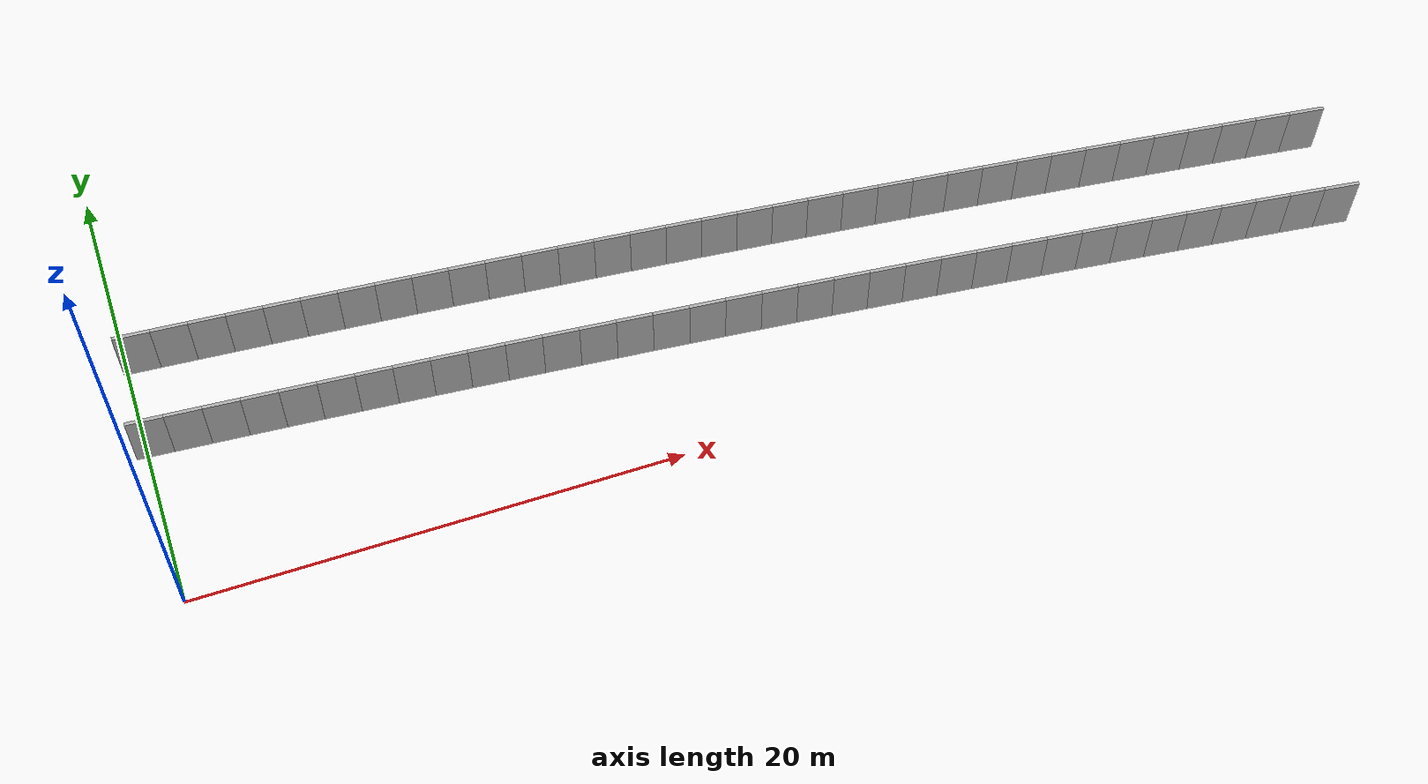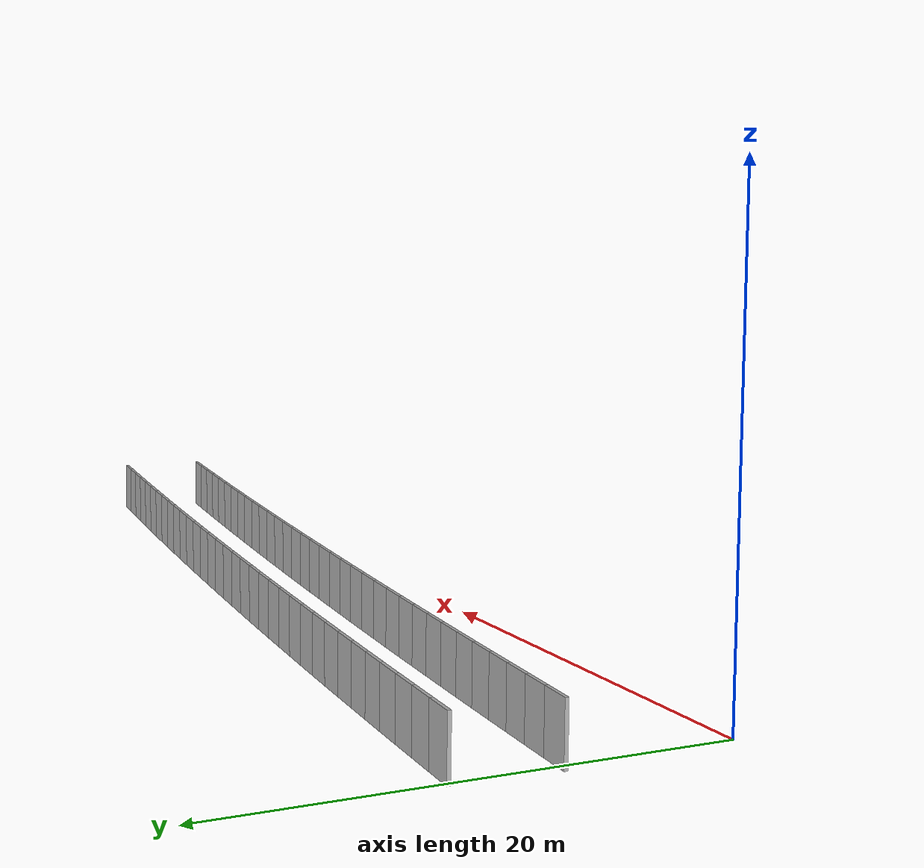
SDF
<?xml version="1.0" ?>
<sdf version="1.6">
  <model name="sps_2547">
    <pose frame="">0 0 0 0 -0 0</pose>
    <static>1</static>
    <self_collide>0</self_collide>
    <allow_auto_disable>0</allow_auto_disable>
    <link name="Wall2785">
      <kinematic>0</kinematic>
      <gravity>1</gravity>
      <self_collide>0</self_collide>
      <collision name="collision">
        <geometry>
          <box>
            <size>1.49657 0.15 2.5</size>
          </box>
        </geometry>
        <pose frame="">0 0 0 0 -0 0</pose>
      </collision>
      <visual name="visual">
        <geometry>
          <box>
            <size>1.49657 0.15 2.5</size>
          </box>
        </geometry>
        <pose frame="">0 0 0 0 -0 0</pose>
        <cast_shadows>1</cast_shadows>
        <transparency>0.0</transparency>
      </visual>
      <pose frame="">49.431 2.0302 1.25 0 -0 3.01741</pose>
    </link>
    <link name="Wall2786">
      <kinematic>0</kinematic>
      <gravity>1</gravity>
      <self_collide>0</self_collide>
      <collision name="collision">
        <geometry>
          <box>
            <size>1.49641 0.15 2.5</size>
          </box>
        </geometry>
        <pose frame="">0 0 0 0 -0 0</pose>
      </collision>
      <visual name="visual">
        <geometry>
          <box>
            <size>1.49641 0.15 2.5</size>
          </box>
        </geometry>
        <pose frame="">0 0 0 0 -0 0</pose>
        <cast_shadows>1</cast_shadows>
        <transparency>0.0</transparency>
      </visual>
      <pose frame="">47.9459 2.2144 1.25 0 -0 3.01896</pose>
    </link>
    <link name="Wall2787">
      <kinematic>0</kinematic>
      <gravity>1</gravity>
      <self_collide>0</self_collide>
      <collision name="collision">
        <geometry>
          <box>
            <size>1.49656 0.15 2.5</size>
          </box>
        </geometry>
        <pose frame="">0 0 0 0 -0 0</pose>
      </collision>
      <visual name="visual">
        <geometry>
          <box>
            <size>1.49656 0.15 2.5</size>
          </box>
        </geometry>
        <pose frame="">0 0 0 0 -0 0</pose>
        <cast_shadows>1</cast_shadows>
        <transparency>0.0</transparency>
      </visual>
      <pose frame="">46.4605 2.39632 1.25 0 -0 3.0205</pose>
    </link>
    <link name="Wall2788">
      <kinematic>0</kinematic>
      <gravity>1</gravity>
      <self_collide>0</self_collide>
      <collision name="collision">
        <geometry>
          <box>
            <size>1.49651 0.15 2.5</size>
          </box>
        </geometry>
        <pose frame="">0 0 0 0 -0 0</pose>
      </collision>
      <visual name="visual">
        <geometry>
          <box>
            <size>1.49651 0.15 2.5</size>
          </box>
        </geometry>
        <pose frame="">0 0 0 0 -0 0</pose>
        <cast_shadows>1</cast_shadows>
        <transparency>0.0</transparency>
      </visual>
      <pose frame="">44.9748 2.57591 1.25 0 -0 3.02209</pose>
    </link>
    <link name="Wall2789">
      <kinematic>0</kinematic>
      <gravity>1</gravity>
      <self_collide>0</self_collide>
      <collision name="collision">
        <geometry>
          <box>
            <size>1.49664 0.15 2.5</size>
          </box>
        </geometry>
        <pose frame="">0 0 0 0 -0 0</pose>
      </collision>
      <visual name="visual">
        <geometry>
          <box>
            <size>1.49664 0.15 2.5</size>
          </box>
        </geometry>
        <pose frame="">0 0 0 0 -0 0</pose>
        <cast_shadows>1</cast_shadows>
        <transparency>0.0</transparency>
      </visual>
      <pose frame="">43.4887 2.75331 1.25 0 -0 3.02346</pose>
    </link>
    <link name="Wall2790">
      <kinematic>0</kinematic>
      <gravity>1</gravity>
      <self_collide>0</self_collide>
      <collision name="collision">
        <geometry>
          <box>
            <size>1.49649 0.15 2.5</size>
          </box>
        </geometry>
        <pose frame="">0 0 0 0 -0 0</pose>
      </collision>
      <visual name="visual">
        <geometry>
          <box>
            <size>1.49649 0.15 2.5</size>
          </box>
        </geometry>
        <pose frame="">0 0 0 0 -0 0</pose>
        <cast_shadows>1</cast_shadows>
        <transparency>0.0</transparency>
      </visual>
      <pose frame="">42.0024 2.9283 1.25 0 -0 3.02534</pose>
    </link>
    <link name="Wall2791">
      <kinematic>0</kinematic>
      <gravity>1</gravity>
      <self_collide>0</self_collide>
      <collision name="collision">
        <geometry>
          <box>
            <size>1.49624 0.15 2.5</size>
          </box>
        </geometry>
        <pose frame="">0 0 0 0 -0 0</pose>
      </collision>
      <visual name="visual">
        <geometry>
          <box>
            <size>1.49624 0.15 2.5</size>
          </box>
        </geometry>
        <pose frame="">0 0 0 0 -0 0</pose>
        <cast_shadows>1</cast_shadows>
        <transparency>0.0</transparency>
      </visual>
      <pose frame="">40.516 3.10078 1.25 0 -0 3.0268</pose>
    </link>
    <link name="Wall2792">
      <kinematic>0</kinematic>
      <gravity>1</gravity>
      <self_collide>0</self_collide>
      <collision name="collision">
        <geometry>
          <box>
            <size>1.49655 0.15 2.5</size>
          </box>
        </geometry>
        <pose frame="">0 0 0 0 -0 0</pose>
      </collision>
      <visual name="visual">
        <geometry>
          <box>
            <size>1.49655 0.15 2.5</size>
          </box>
        </geometry>
        <pose frame="">0 0 0 0 -0 0</pose>
        <cast_shadows>1</cast_shadows>
        <transparency>0.0</transparency>
      </visual>
      <pose frame="">39.0293 3.27089 1.25 0 -0 3.02854</pose>
    </link>
    <link name="Wall2793">
      <kinematic>0</kinematic>
      <gravity>1</gravity>
      <self_collide>0</self_collide>
      <collision name="collision">
        <geometry>
          <box>
            <size>1.49648 0.15 2.5</size>
          </box>
        </geometry>
        <pose frame="">0 0 0 0 -0 0</pose>
      </collision>
      <visual name="visual">
        <geometry>
          <box>
            <size>1.49648 0.15 2.5</size>
          </box>
        </geometry>
        <pose frame="">0 0 0 0 -0 0</pose>
        <cast_shadows>1</cast_shadows>
        <transparency>0.0</transparency>
      </visual>
      <pose frame="">37.5423 3.43858 1.25 0 -0 3.03006</pose>
    </link>
    <link name="Wall2794">
      <kinematic>0</kinematic>
      <gravity>1</gravity>
      <self_collide>0</self_collide>
      <collision name="collision">
        <geometry>
          <box>
            <size>1.49647 0.15 2.5</size>
          </box>
        </geometry>
        <pose frame="">0 0 0 0 -0 0</pose>
      </collision>
      <visual name="visual">
        <geometry>
          <box>
            <size>1.49647 0.15 2.5</size>
          </box>
        </geometry>
        <pose frame="">0 0 0 0 -0 0</pose>
        <cast_shadows>1</cast_shadows>
        <transparency>0.0</transparency>
      </visual>
      <pose frame="">36.055 3.60399 1.25 0 -0 3.03162</pose>
    </link>
    <link name="Wall2795">
      <kinematic>0</kinematic>
      <gravity>1</gravity>
      <self_collide>0</self_collide>
      <collision name="collision">
        <geometry>
          <box>
            <size>1.49659 0.15 2.5</size>
          </box>
        </geometry>
        <pose frame="">0 0 0 0 -0 0</pose>
      </collision>
      <visual name="visual">
        <geometry>
          <box>
            <size>1.49659 0.15 2.5</size>
          </box>
        </geometry>
        <pose frame="">0 0 0 0 -0 0</pose>
        <cast_shadows>1</cast_shadows>
        <transparency>0.0</transparency>
      </visual>
      <pose frame="">34.5673 3.7671 1.25 0 -0 3.03314</pose>
    </link>
    <link name="Wall2796">
      <kinematic>0</kinematic>
      <gravity>1</gravity>
      <self_collide>0</self_collide>
      <collision name="collision">
        <geometry>
          <box>
            <size>1.49649 0.15 2.5</size>
          </box>
        </geometry>
        <pose frame="">0 0 0 0 -0 0</pose>
      </collision>
      <visual name="visual">
        <geometry>
          <box>
            <size>1.49649 0.15 2.5</size>
          </box>
        </geometry>
        <pose frame="">0 0 0 0 -0 0</pose>
        <cast_shadows>1</cast_shadows>
        <transparency>0.0</transparency>
      </visual>
      <pose frame="">33.0795 3.92781 1.25 0 -0 3.03486</pose>
    </link>
    <link name="Wall2797">
      <kinematic>0</kinematic>
      <gravity>1</gravity>
      <self_collide>0</self_collide>
      <collision name="collision">
        <geometry>
          <box>
            <size>1.49652 0.15 2.5</size>
          </box>
        </geometry>
        <pose frame="">0 0 0 0 -0 0</pose>
      </collision>
      <visual name="visual">
        <geometry>
          <box>
            <size>1.49652 0.15 2.5</size>
          </box>
        </geometry>
        <pose frame="">0 0 0 0 -0 0</pose>
        <cast_shadows>1</cast_shadows>
        <transparency>0.0</transparency>
      </visual>
      <pose frame="">31.5914 4.0862 1.25 0 -0 3.03625</pose>
    </link>
    <link name="Wall2798">
      <kinematic>0</kinematic>
      <gravity>1</gravity>
      <self_collide>0</self_collide>
      <collision name="collision">
        <geometry>
          <box>
            <size>1.49659 0.15 2.5</size>
          </box>
        </geometry>
        <pose frame="">0 0 0 0 -0 0</pose>
      </collision>
      <visual name="visual">
        <geometry>
          <box>
            <size>1.49659 0.15 2.5</size>
          </box>
        </geometry>
        <pose frame="">0 0 0 0 -0 0</pose>
        <cast_shadows>1</cast_shadows>
        <transparency>0.0</transparency>
      </visual>
      <pose frame="">30.103 4.24217 1.25 0 -0 3.03811</pose>
    </link>
    <link name="Wall2799">
      <kinematic>0</kinematic>
      <gravity>1</gravity>
      <self_collide>0</self_collide>
      <collision name="collision">
        <geometry>
          <box>
            <size>1.49664 0.15 2.5</size>
          </box>
        </geometry>
        <pose frame="">0 0 0 0 -0 0</pose>
      </collision>
      <visual name="visual">
        <geometry>
          <box>
            <size>1.49664 0.15 2.5</size>
          </box>
        </geometry>
        <pose frame="">0 0 0 0 -0 0</pose>
        <cast_shadows>1</cast_shadows>
        <transparency>0.0</transparency>
      </visual>
      <pose frame="">28.6142 4.3958 1.25 0 -0 3.03942</pose>
    </link>
    <link name="Wall2800">
      <kinematic>0</kinematic>
      <gravity>1</gravity>
      <self_collide>0</self_collide>
      <collision name="collision">
        <geometry>
          <box>
            <size>1.4963 0.15 2.5</size>
          </box>
        </geometry>
        <pose frame="">0 0 0 0 -0 0</pose>
      </collision>
      <visual name="visual">
        <geometry>
          <box>
            <size>1.4963 0.15 2.5</size>
          </box>
        </geometry>
        <pose frame="">0 0 0 0 -0 0</pose>
        <cast_shadows>1</cast_shadows>
        <transparency>0.0</transparency>
      </visual>
      <pose frame="">27.1254 4.5471 1.25 0 -0 3.0412</pose>
    </link>
    <link name="Wall2801">
      <kinematic>0</kinematic>
      <gravity>1</gravity>
      <self_collide>0</self_collide>
      <collision name="collision">
        <geometry>
          <box>
            <size>1.49649 0.15 2.5</size>
          </box>
        </geometry>
        <pose frame="">0 0 0 0 -0 0</pose>
      </collision>
      <visual name="visual">
        <geometry>
          <box>
            <size>1.49649 0.15 2.5</size>
          </box>
        </geometry>
        <pose frame="">0 0 0 0 -0 0</pose>
        <cast_shadows>1</cast_shadows>
        <transparency>0.0</transparency>
      </visual>
      <pose frame="">25.6365 4.69588 1.25 0 -0 3.04281</pose>
    </link>
    <link name="Wall2802">
      <kinematic>0</kinematic>
      <gravity>1</gravity>
      <self_collide>0</self_collide>
      <collision name="collision">
        <geometry>
          <box>
            <size>1.49653 0.15 2.5</size>
          </box>
        </geometry>
        <pose frame="">0 0 0 0 -0 0</pose>
      </collision>
      <visual name="visual">
        <geometry>
          <box>
            <size>1.49653 0.15 2.5</size>
          </box>
        </geometry>
        <pose frame="">0 0 0 0 -0 0</pose>
        <cast_shadows>1</cast_shadows>
        <transparency>0.0</transparency>
      </visual>
      <pose frame="">24.1471 4.84239 1.25 0 -0 3.04425</pose>
    </link>
    <link name="Wall2803">
      <kinematic>0</kinematic>
      <gravity>1</gravity>
      <self_collide>0</self_collide>
      <collision name="collision">
        <geometry>
          <box>
            <size>1.49641 0.15 2.5</size>
          </box>
        </geometry>
        <pose frame="">0 0 0 0 -0 0</pose>
      </collision>
      <visual name="visual">
        <geometry>
          <box>
            <size>1.49641 0.15 2.5</size>
          </box>
        </geometry>
        <pose frame="">0 0 0 0 -0 0</pose>
        <cast_shadows>1</cast_shadows>
        <transparency>0.0</transparency>
      </visual>
      <pose frame="">22.6576 4.98662 1.25 0 -0 3.04588</pose>
    </link>
    <link name="Wall2804">
      <kinematic>0</kinematic>
      <gravity>1</gravity>
      <self_collide>0</self_collide>
      <collision name="collision">
        <geometry>
          <box>
            <size>1.49662 0.15 2.5</size>
          </box>
        </geometry>
        <pose frame="">0 0 0 0 -0 0</pose>
      </collision>
      <visual name="visual">
        <geometry>
          <box>
            <size>1.49662 0.15 2.5</size>
          </box>
        </geometry>
        <pose frame="">0 0 0 0 -0 0</pose>
        <cast_shadows>1</cast_shadows>
        <transparency>0.0</transparency>
      </visual>
      <pose frame="">21.1679 5.12849 1.25 0 -0 3.04741</pose>
    </link>
    <link name="Wall2805">
      <kinematic>0</kinematic>
      <gravity>1</gravity>
      <self_collide>0</self_collide>
      <collision name="collision">
        <geometry>
          <box>
            <size>1.49641 0.15 2.5</size>
          </box>
        </geometry>
        <pose frame="">0 0 0 0 -0 0</pose>
      </collision>
      <visual name="visual">
        <geometry>
          <box>
            <size>1.49641 0.15 2.5</size>
          </box>
        </geometry>
        <pose frame="">0 0 0 0 -0 0</pose>
        <cast_shadows>1</cast_shadows>
        <transparency>0.0</transparency>
      </visual>
      <pose frame="">19.6779 5.26808 1.25 0 -0 3.04895</pose>
    </link>
    <link name="Wall2806">
      <kinematic>0</kinematic>
      <gravity>1</gravity>
      <self_collide>0</self_collide>
      <collision name="collision">
        <geometry>
          <box>
            <size>1.49643 0.15 2.5</size>
          </box>
        </geometry>
        <pose frame="">0 0 0 0 -0 0</pose>
      </collision>
      <visual name="visual">
        <geometry>
          <box>
            <size>1.49643 0.15 2.5</size>
          </box>
        </geometry>
        <pose frame="">0 0 0 0 -0 0</pose>
        <cast_shadows>1</cast_shadows>
        <transparency>0.0</transparency>
      </visual>
      <pose frame="">18.1878 5.40529 1.25 0 -0 3.05059</pose>
    </link>
    <link name="Wall2807">
      <kinematic>0</kinematic>
      <gravity>1</gravity>
      <self_collide>0</self_collide>
      <collision name="collision">
        <geometry>
          <box>
            <size>1.49658 0.15 2.5</size>
          </box>
        </geometry>
        <pose frame="">0 0 0 0 -0 0</pose>
      </collision>
      <visual name="visual">
        <geometry>
          <box>
            <size>1.49658 0.15 2.5</size>
          </box>
        </geometry>
        <pose frame="">0 0 0 0 -0 0</pose>
        <cast_shadows>1</cast_shadows>
        <transparency>0.0</transparency>
      </visual>
      <pose frame="">16.6973 5.54008 1.25 0 -0 3.0522</pose>
    </link>
    <link name="Wall2808">
      <kinematic>0</kinematic>
      <gravity>1</gravity>
      <self_collide>0</self_collide>
      <collision name="collision">
        <geometry>
          <box>
            <size>1.49655 0.15 2.5</size>
          </box>
        </geometry>
        <pose frame="">0 0 0 0 -0 0</pose>
      </collision>
      <visual name="visual">
        <geometry>
          <box>
            <size>1.49655 0.15 2.5</size>
          </box>
        </geometry>
        <pose frame="">0 0 0 0 -0 0</pose>
        <cast_shadows>1</cast_shadows>
        <transparency>0.0</transparency>
      </visual>
      <pose frame="">15.2067 5.6725 1.25 0 -0 3.05379</pose>
    </link>
    <link name="Wall2809">
      <kinematic>0</kinematic>
      <gravity>1</gravity>
      <self_collide>0</self_collide>
      <collision name="collision">
        <geometry>
          <box>
            <size>1.49658 0.15 2.5</size>
          </box>
        </geometry>
        <pose frame="">0 0 0 0 -0 0</pose>
      </collision>
      <visual name="visual">
        <geometry>
          <box>
            <size>1.49658 0.15 2.5</size>
          </box>
        </geometry>
        <pose frame="">0 0 0 0 -0 0</pose>
        <cast_shadows>1</cast_shadows>
        <transparency>0.0</transparency>
      </visual>
      <pose frame="">13.7158 5.8025 1.25 0 -0 3.05543</pose>
    </link>
    <link name="Wall2810">
      <kinematic>0</kinematic>
      <gravity>1</gravity>
      <self_collide>0</self_collide>
      <collision name="collision">
        <geometry>
          <box>
            <size>1.49633 0.15 2.5</size>
          </box>
        </geometry>
        <pose frame="">0 0 0 0 -0 0</pose>
      </collision>
      <visual name="visual">
        <geometry>
          <box>
            <size>1.49633 0.15 2.5</size>
          </box>
        </geometry>
        <pose frame="">0 0 0 0 -0 0</pose>
        <cast_shadows>1</cast_shadows>
        <transparency>0.0</transparency>
      </visual>
      <pose frame="">12.2248 5.93019 1.25 0 -0 3.05689</pose>
    </link>
    <link name="Wall2811">
      <kinematic>0</kinematic>
      <gravity>1</gravity>
      <self_collide>0</self_collide>
      <collision name="collision">
        <geometry>
          <box>
            <size>1.49654 0.15 2.5</size>
          </box>
        </geometry>
        <pose frame="">0 0 0 0 -0 0</pose>
      </collision>
      <visual name="visual">
        <geometry>
          <box>
            <size>1.49654 0.15 2.5</size>
          </box>
        </geometry>
        <pose frame="">0 0 0 0 -0 0</pose>
        <cast_shadows>1</cast_shadows>
        <transparency>0.0</transparency>
      </visual>
      <pose frame="">10.7336 6.0555 1.25 0 -0 3.05862</pose>
    </link>
    <link name="Wall2812">
      <kinematic>0</kinematic>
      <gravity>1</gravity>
      <self_collide>0</self_collide>
      <collision name="collision">
        <geometry>
          <box>
            <size>1.4966 0.15 2.5</size>
          </box>
        </geometry>
        <pose frame="">0 0 0 0 -0 0</pose>
      </collision>
      <visual name="visual">
        <geometry>
          <box>
            <size>1.4966 0.15 2.5</size>
          </box>
        </geometry>
        <pose frame="">0 0 0 0 -0 0</pose>
        <cast_shadows>1</cast_shadows>
        <transparency>0.0</transparency>
      </visual>
      <pose frame="">9.24206 6.17839 1.25 0 -0 3.06014</pose>
    </link>
    <link name="Wall2813">
      <kinematic>0</kinematic>
      <gravity>1</gravity>
      <self_collide>0</self_collide>
      <collision name="collision">
        <geometry>
          <box>
            <size>1.49653 0.15 2.5</size>
          </box>
        </geometry>
        <pose frame="">0 0 0 0 -0 0</pose>
      </collision>
      <visual name="visual">
        <geometry>
          <box>
            <size>1.49653 0.15 2.5</size>
          </box>
        </geometry>
        <pose frame="">0 0 0 0 -0 0</pose>
        <cast_shadows>1</cast_shadows>
        <transparency>0.0</transparency>
      </visual>
      <pose frame="">7.75036 6.29899 1.25 0 -0 3.06169</pose>
    </link>
    <link name="Wall2814">
      <kinematic>0</kinematic>
      <gravity>1</gravity>
      <self_collide>0</self_collide>
      <collision name="collision">
        <geometry>
          <box>
            <size>1.4964 0.15 2.5</size>
          </box>
        </geometry>
        <pose frame="">0 0 0 0 -0 0</pose>
      </collision>
      <visual name="visual">
        <geometry>
          <box>
            <size>1.4964 0.15 2.5</size>
          </box>
        </geometry>
        <pose frame="">0 0 0 0 -0 0</pose>
        <cast_shadows>1</cast_shadows>
        <transparency>0.0</transparency>
      </visual>
      <pose frame="">6.25857 6.41722 1.25 0 -0 3.06332</pose>
    </link>
    <link name="Wall2815">
      <kinematic>0</kinematic>
      <gravity>1</gravity>
      <self_collide>0</self_collide>
      <collision name="collision">
        <geometry>
          <box>
            <size>1.49659 0.15 2.5</size>
          </box>
        </geometry>
        <pose frame="">0 0 0 0 -0 0</pose>
      </collision>
      <visual name="visual">
        <geometry>
          <box>
            <size>1.49659 0.15 2.5</size>
          </box>
        </geometry>
        <pose frame="">0 0 0 0 -0 0</pose>
        <cast_shadows>1</cast_shadows>
        <transparency>0.0</transparency>
      </visual>
      <pose frame="">4.76656 6.5331 1.25 0 -0 3.06485</pose>
    </link>
    <link name="Wall2816">
      <kinematic>0</kinematic>
      <gravity>1</gravity>
      <self_collide>0</self_collide>
      <collision name="collision">
        <geometry>
          <box>
            <size>1.4964 0.15 2.5</size>
          </box>
        </geometry>
        <pose frame="">0 0 0 0 -0 0</pose>
      </collision>
      <visual name="visual">
        <geometry>
          <box>
            <size>1.4964 0.15 2.5</size>
          </box>
        </geometry>
        <pose frame="">0 0 0 0 -0 0</pose>
        <cast_shadows>1</cast_shadows>
        <transparency>0.0</transparency>
      </visual>
      <pose frame="">3.27438 6.64659 1.25 0 -0 3.06651</pose>
    </link>
    <link name="Wall2817">
      <kinematic>0</kinematic>
      <gravity>1</gravity>
      <self_collide>0</self_collide>
      <collision name="collision">
        <geometry>
          <box>
            <size>1.49648 0.15 2.5</size>
          </box>
        </geometry>
        <pose frame="">0 0 0 0 -0 0</pose>
      </collision>
      <visual name="visual">
        <geometry>
          <box>
            <size>1.49648 0.15 2.5</size>
          </box>
        </geometry>
        <pose frame="">0 0 0 0 -0 0</pose>
        <cast_shadows>1</cast_shadows>
        <transparency>0.0</transparency>
      </visual>
      <pose frame="">1.78207 6.7577 1.25 0 -0 3.06803</pose>
    </link>
    <link name="Wall2818">
      <kinematic>0</kinematic>
      <gravity>1</gravity>
      <self_collide>0</self_collide>
      <collision name="collision">
        <geometry>
          <box>
            <size>1.49648 0.15 2.5</size>
          </box>
        </geometry>
        <pose frame="">0 0 0 0 -0 0</pose>
      </collision>
      <visual name="visual">
        <geometry>
          <box>
            <size>1.49648 0.15 2.5</size>
          </box>
        </geometry>
        <pose frame="">0 0 0 0 -0 0</pose>
        <cast_shadows>1</cast_shadows>
        <transparency>0.0</transparency>
      </visual>
      <pose frame="">0.289542 6.86641 1.25 0 -0 3.06975</pose>
    </link>
    <link name="Wall5396">
      <kinematic>0</kinematic>
      <gravity>1</gravity>
      <self_collide>0</self_collide>
      <collision name="collision">
        <geometry>
          <box>
            <size>1.50297 0.15 2.5</size>
          </box>
        </geometry>
        <pose frame="">0 0 0 0 -0 0</pose>
      </collision>
      <visual name="visual">
        <geometry>
          <box>
            <size>1.50297 0.15 2.5</size>
          </box>
        </geometry>
        <pose frame="">0 0 0 0 -0 0</pose>
        <cast_shadows>1</cast_shadows>
        <transparency>0.0</transparency>
      </visual>
      <pose frame="">49.9435 6.13798 1.25 0 -0 3.01737</pose>
    </link>
    <link name="Wall5397">
      <kinematic>0</kinematic>
      <gravity>1</gravity>
      <self_collide>0</self_collide>
      <collision name="collision">
        <geometry>
          <box>
            <size>1.50307 0.15 2.5</size>
          </box>
        </geometry>
        <pose frame="">0 0 0 0 -0 0</pose>
      </collision>
      <visual name="visual">
        <geometry>
          <box>
            <size>1.50307 0.15 2.5</size>
          </box>
        </geometry>
        <pose frame="">0 0 0 0 -0 0</pose>
        <cast_shadows>1</cast_shadows>
        <transparency>0.0</transparency>
      </visual>
      <pose frame="">48.452 6.3231 1.25 0 -0 3.01885</pose>
    </link>
    <link name="Wall5398">
      <kinematic>0</kinematic>
      <gravity>1</gravity>
      <self_collide>0</self_collide>
      <collision name="collision">
        <geometry>
          <box>
            <size>1.50323 0.15 2.5</size>
          </box>
        </geometry>
        <pose frame="">0 0 0 0 -0 0</pose>
      </collision>
      <visual name="visual">
        <geometry>
          <box>
            <size>1.50323 0.15 2.5</size>
          </box>
        </geometry>
        <pose frame="">0 0 0 0 -0 0</pose>
        <cast_shadows>1</cast_shadows>
        <transparency>0.0</transparency>
      </visual>
      <pose frame="">46.96 6.50581 1.25 0 -0 3.02063</pose>
    </link>
    <link name="Wall5399">
      <kinematic>0</kinematic>
      <gravity>1</gravity>
      <self_collide>0</self_collide>
      <collision name="collision">
        <geometry>
          <box>
            <size>1.50306 0.15 2.5</size>
          </box>
        </geometry>
        <pose frame="">0 0 0 0 -0 0</pose>
      </collision>
      <visual name="visual">
        <geometry>
          <box>
            <size>1.50306 0.15 2.5</size>
          </box>
        </geometry>
        <pose frame="">0 0 0 0 -0 0</pose>
        <cast_shadows>1</cast_shadows>
        <transparency>0.0</transparency>
      </visual>
      <pose frame="">45.4676 6.68599 1.25 0 -0 3.02225</pose>
    </link>
    <link name="Wall5400">
      <kinematic>0</kinematic>
      <gravity>1</gravity>
      <self_collide>0</self_collide>
      <collision name="collision">
        <geometry>
          <box>
            <size>1.50307 0.15 2.5</size>
          </box>
        </geometry>
        <pose frame="">0 0 0 0 -0 0</pose>
      </collision>
      <visual name="visual">
        <geometry>
          <box>
            <size>1.50307 0.15 2.5</size>
          </box>
        </geometry>
        <pose frame="">0 0 0 0 -0 0</pose>
        <cast_shadows>1</cast_shadows>
        <transparency>0.0</transparency>
      </visual>
      <pose frame="">43.9752 6.86397 1.25 0 -0 3.02356</pose>
    </link>
    <link name="Wall5401">
      <kinematic>0</kinematic>
      <gravity>1</gravity>
      <self_collide>0</self_collide>
      <collision name="collision">
        <geometry>
          <box>
            <size>1.50296 0.15 2.5</size>
          </box>
        </geometry>
        <pose frame="">0 0 0 0 -0 0</pose>
      </collision>
      <visual name="visual">
        <geometry>
          <box>
            <size>1.50296 0.15 2.5</size>
          </box>
        </geometry>
        <pose frame="">0 0 0 0 -0 0</pose>
        <cast_shadows>1</cast_shadows>
        <transparency>0.0</transparency>
      </visual>
      <pose frame="">42.4824 7.03969 1.25 0 -0 3.02527</pose>
    </link>
    <link name="Wall5402">
      <kinematic>0</kinematic>
      <gravity>1</gravity>
      <self_collide>0</self_collide>
      <collision name="collision">
        <geometry>
          <box>
            <size>1.50306 0.15 2.5</size>
          </box>
        </geometry>
        <pose frame="">0 0 0 0 -0 0</pose>
      </collision>
      <visual name="visual">
        <geometry>
          <box>
            <size>1.50306 0.15 2.5</size>
          </box>
        </geometry>
        <pose frame="">0 0 0 0 -0 0</pose>
        <cast_shadows>1</cast_shadows>
        <transparency>0.0</transparency>
      </visual>
      <pose frame="">40.9895 7.213 1.25 0 -0 3.02679</pose>
    </link>
    <link name="Wall5403">
      <kinematic>0</kinematic>
      <gravity>1</gravity>
      <self_collide>0</self_collide>
      <collision name="collision">
        <geometry>
          <box>
            <size>1.50325 0.15 2.5</size>
          </box>
        </geometry>
        <pose frame="">0 0 0 0 -0 0</pose>
      </collision>
      <visual name="visual">
        <geometry>
          <box>
            <size>1.50325 0.15 2.5</size>
          </box>
        </geometry>
        <pose frame="">0 0 0 0 -0 0</pose>
        <cast_shadows>1</cast_shadows>
        <transparency>0.0</transparency>
      </visual>
      <pose frame="">39.4961 7.38389 1.25 0 -0 3.02852</pose>
    </link>
    <link name="Wall5404">
      <kinematic>0</kinematic>
      <gravity>1</gravity>
      <self_collide>0</self_collide>
      <collision name="collision">
        <geometry>
          <box>
            <size>1.50295 0.15 2.5</size>
          </box>
        </geometry>
        <pose frame="">0 0 0 0 -0 0</pose>
      </collision>
      <visual name="visual">
        <geometry>
          <box>
            <size>1.50295 0.15 2.5</size>
          </box>
        </geometry>
        <pose frame="">0 0 0 0 -0 0</pose>
        <cast_shadows>1</cast_shadows>
        <transparency>0.0</transparency>
      </visual>
      <pose frame="">38.0024 7.55241 1.25 0 -0 3.02997</pose>
    </link>
    <link name="Wall5405">
      <kinematic>0</kinematic>
      <gravity>1</gravity>
      <self_collide>0</self_collide>
      <collision name="collision">
        <geometry>
          <box>
            <size>1.50328 0.15 2.5</size>
          </box>
        </geometry>
        <pose frame="">0 0 0 0 -0 0</pose>
      </collision>
      <visual name="visual">
        <geometry>
          <box>
            <size>1.50328 0.15 2.5</size>
          </box>
        </geometry>
        <pose frame="">0 0 0 0 -0 0</pose>
        <cast_shadows>1</cast_shadows>
        <transparency>0.0</transparency>
      </visual>
      <pose frame="">36.5085 7.71861 1.25 0 -0 3.03163</pose>
    </link>
    <link name="Wall5406">
      <kinematic>0</kinematic>
      <gravity>1</gravity>
      <self_collide>0</self_collide>
      <collision name="collision">
        <geometry>
          <box>
            <size>1.50302 0.15 2.5</size>
          </box>
        </geometry>
        <pose frame="">0 0 0 0 -0 0</pose>
      </collision>
      <visual name="visual">
        <geometry>
          <box>
            <size>1.50302 0.15 2.5</size>
          </box>
        </geometry>
        <pose frame="">0 0 0 0 -0 0</pose>
        <cast_shadows>1</cast_shadows>
        <transparency>0.0</transparency>
      </visual>
      <pose frame="">35.0143 7.8824 1.25 0 -0 3.0332</pose>
    </link>
    <link name="Wall5407">
      <kinematic>0</kinematic>
      <gravity>1</gravity>
      <self_collide>0</self_collide>
      <collision name="collision">
        <geometry>
          <box>
            <size>1.50313 0.15 2.5</size>
          </box>
        </geometry>
        <pose frame="">0 0 0 0 -0 0</pose>
      </collision>
      <visual name="visual">
        <geometry>
          <box>
            <size>1.50313 0.15 2.5</size>
          </box>
        </geometry>
        <pose frame="">0 0 0 0 -0 0</pose>
        <cast_shadows>1</cast_shadows>
        <transparency>0.0</transparency>
      </visual>
      <pose frame="">33.52 8.04381 1.25 0 -0 3.0348</pose>
    </link>
    <link name="Wall5408">
      <kinematic>0</kinematic>
      <gravity>1</gravity>
      <self_collide>0</self_collide>
      <collision name="collision">
        <geometry>
          <box>
            <size>1.50293 0.15 2.5</size>
          </box>
        </geometry>
        <pose frame="">0 0 0 0 -0 0</pose>
      </collision>
      <visual name="visual">
        <geometry>
          <box>
            <size>1.50293 0.15 2.5</size>
          </box>
        </geometry>
        <pose frame="">0 0 0 0 -0 0</pose>
        <cast_shadows>1</cast_shadows>
        <transparency>0.0</transparency>
      </visual>
      <pose frame="">32.0254 8.2028 1.25 0 -0 3.03642</pose>
    </link>
    <link name="Wall5409">
      <kinematic>0</kinematic>
      <gravity>1</gravity>
      <self_collide>0</self_collide>
      <collision name="collision">
        <geometry>
          <box>
            <size>1.50307 0.15 2.5</size>
          </box>
        </geometry>
        <pose frame="">0 0 0 0 -0 0</pose>
      </collision>
      <visual name="visual">
        <geometry>
          <box>
            <size>1.50307 0.15 2.5</size>
          </box>
        </geometry>
        <pose frame="">0 0 0 0 -0 0</pose>
        <cast_shadows>1</cast_shadows>
        <transparency>0.0</transparency>
      </visual>
      <pose frame="">30.5305 8.35948 1.25 0 -0 3.0379</pose>
    </link>
    <link name="Wall5410">
      <kinematic>0</kinematic>
      <gravity>1</gravity>
      <self_collide>0</self_collide>
      <collision name="collision">
        <geometry>
          <box>
            <size>1.50319 0.15 2.5</size>
          </box>
        </geometry>
        <pose frame="">0 0 0 0 -0 0</pose>
      </collision>
      <visual name="visual">
        <geometry>
          <box>
            <size>1.50319 0.15 2.5</size>
          </box>
        </geometry>
        <pose frame="">0 0 0 0 -0 0</pose>
        <cast_shadows>1</cast_shadows>
        <transparency>0.0</transparency>
      </visual>
      <pose frame="">29.0354 8.51387 1.25 0 -0 3.0395</pose>
    </link>
    <link name="Wall5411">
      <kinematic>0</kinematic>
      <gravity>1</gravity>
      <self_collide>0</self_collide>
      <collision name="collision">
        <geometry>
          <box>
            <size>1.50299 0.15 2.5</size>
          </box>
        </geometry>
        <pose frame="">0 0 0 0 -0 0</pose>
      </collision>
      <visual name="visual">
        <geometry>
          <box>
            <size>1.50299 0.15 2.5</size>
          </box>
        </geometry>
        <pose frame="">0 0 0 0 -0 0</pose>
        <cast_shadows>1</cast_shadows>
        <transparency>0.0</transparency>
      </visual>
      <pose frame="">27.54 8.66579 1.25 0 -0 3.0412</pose>
    </link>
    <link name="Wall5412">
      <kinematic>0</kinematic>
      <gravity>1</gravity>
      <self_collide>0</self_collide>
      <collision name="collision">
        <geometry>
          <box>
            <size>1.50313 0.15 2.5</size>
          </box>
        </geometry>
        <pose frame="">0 0 0 0 -0 0</pose>
      </collision>
      <visual name="visual">
        <geometry>
          <box>
            <size>1.50313 0.15 2.5</size>
          </box>
        </geometry>
        <pose frame="">0 0 0 0 -0 0</pose>
        <cast_shadows>1</cast_shadows>
        <transparency>0.0</transparency>
      </visual>
      <pose frame="">26.0444 8.81529 1.25 0 -0 3.04272</pose>
    </link>
    <link name="Wall5413">
      <kinematic>0</kinematic>
      <gravity>1</gravity>
      <self_collide>0</self_collide>
      <collision name="collision">
        <geometry>
          <box>
            <size>1.50314 0.15 2.5</size>
          </box>
        </geometry>
        <pose frame="">0 0 0 0 -0 0</pose>
      </collision>
      <visual name="visual">
        <geometry>
          <box>
            <size>1.50314 0.15 2.5</size>
          </box>
        </geometry>
        <pose frame="">0 0 0 0 -0 0</pose>
        <cast_shadows>1</cast_shadows>
        <transparency>0.0</transparency>
      </visual>
      <pose frame="">24.5485 8.96248 1.25 0 -0 3.04431</pose>
    </link>
    <link name="Wall5414">
      <kinematic>0</kinematic>
      <gravity>1</gravity>
      <self_collide>0</self_collide>
      <collision name="collision">
        <geometry>
          <box>
            <size>1.50305 0.15 2.5</size>
          </box>
        </geometry>
        <pose frame="">0 0 0 0 -0 0</pose>
      </collision>
      <visual name="visual">
        <geometry>
          <box>
            <size>1.50305 0.15 2.5</size>
          </box>
        </geometry>
        <pose frame="">0 0 0 0 -0 0</pose>
        <cast_shadows>1</cast_shadows>
        <transparency>0.0</transparency>
      </visual>
      <pose frame="">23.0524 9.10738 1.25 0 -0 3.04577</pose>
    </link>
    <link name="Wall5415">
      <kinematic>0</kinematic>
      <gravity>1</gravity>
      <self_collide>0</self_collide>
      <collision name="collision">
        <geometry>
          <box>
            <size>1.50307 0.15 2.5</size>
          </box>
        </geometry>
        <pose frame="">0 0 0 0 -0 0</pose>
      </collision>
      <visual name="visual">
        <geometry>
          <box>
            <size>1.50307 0.15 2.5</size>
          </box>
        </geometry>
        <pose frame="">0 0 0 0 -0 0</pose>
        <cast_shadows>1</cast_shadows>
        <transparency>0.0</transparency>
      </visual>
      <pose frame="">21.5561 9.24998 1.25 0 -0 3.04737</pose>
    </link>
    <link name="Wall5416">
      <kinematic>0</kinematic>
      <gravity>1</gravity>
      <self_collide>0</self_collide>
      <collision name="collision">
        <geometry>
          <box>
            <size>1.50308 0.15 2.5</size>
          </box>
        </geometry>
        <pose frame="">0 0 0 0 -0 0</pose>
      </collision>
      <visual name="visual">
        <geometry>
          <box>
            <size>1.50308 0.15 2.5</size>
          </box>
        </geometry>
        <pose frame="">0 0 0 0 -0 0</pose>
        <cast_shadows>1</cast_shadows>
        <transparency>0.0</transparency>
      </visual>
      <pose frame="">20.0596 9.39018 1.25 0 -0 3.049</pose>
    </link>
    <link name="Wall5417">
      <kinematic>0</kinematic>
      <gravity>1</gravity>
      <self_collide>0</self_collide>
      <collision name="collision">
        <geometry>
          <box>
            <size>1.50321 0.15 2.5</size>
          </box>
        </geometry>
        <pose frame="">0 0 0 0 -0 0</pose>
      </collision>
      <visual name="visual">
        <geometry>
          <box>
            <size>1.50321 0.15 2.5</size>
          </box>
        </geometry>
        <pose frame="">0 0 0 0 -0 0</pose>
        <cast_shadows>1</cast_shadows>
        <transparency>0.0</transparency>
      </visual>
      <pose frame="">18.5627 9.52788 1.25 0 -0 3.05072</pose>
    </link>
    <link name="Wall5418">
      <kinematic>0</kinematic>
      <gravity>1</gravity>
      <self_collide>0</self_collide>
      <collision name="collision">
        <geometry>
          <box>
            <size>1.50295 0.15 2.5</size>
          </box>
        </geometry>
        <pose frame="">0 0 0 0 -0 0</pose>
      </collision>
      <visual name="visual">
        <geometry>
          <box>
            <size>1.50295 0.15 2.5</size>
          </box>
        </geometry>
        <pose frame="">0 0 0 0 -0 0</pose>
        <cast_shadows>1</cast_shadows>
        <transparency>0.0</transparency>
      </visual>
      <pose frame="">17.0658 9.66319 1.25 0 -0 3.05217</pose>
    </link>
    <link name="Wall5419">
      <kinematic>0</kinematic>
      <gravity>1</gravity>
      <self_collide>0</self_collide>
      <collision name="collision">
        <geometry>
          <box>
            <size>1.50304 0.15 2.5</size>
          </box>
        </geometry>
        <pose frame="">0 0 0 0 -0 0</pose>
      </collision>
      <visual name="visual">
        <geometry>
          <box>
            <size>1.50304 0.15 2.5</size>
          </box>
        </geometry>
        <pose frame="">0 0 0 0 -0 0</pose>
        <cast_shadows>1</cast_shadows>
        <transparency>0.0</transparency>
      </visual>
      <pose frame="">15.5687 9.79619 1.25 0 -0 3.05381</pose>
    </link>
    <link name="Wall5420">
      <kinematic>0</kinematic>
      <gravity>1</gravity>
      <self_collide>0</self_collide>
      <collision name="collision">
        <geometry>
          <box>
            <size>1.50314 0.15 2.5</size>
          </box>
        </geometry>
        <pose frame="">0 0 0 0 -0 0</pose>
      </collision>
      <visual name="visual">
        <geometry>
          <box>
            <size>1.50314 0.15 2.5</size>
          </box>
        </geometry>
        <pose frame="">0 0 0 0 -0 0</pose>
        <cast_shadows>1</cast_shadows>
        <transparency>0.0</transparency>
      </visual>
      <pose frame="">14.0713 9.92677 1.25 0 -0 3.0554</pose>
    </link>
    <link name="Wall5421">
      <kinematic>0</kinematic>
      <gravity>1</gravity>
      <self_collide>0</self_collide>
      <collision name="collision">
        <geometry>
          <box>
            <size>1.503 0.15 2.5</size>
          </box>
        </geometry>
        <pose frame="">0 0 0 0 -0 0</pose>
      </collision>
      <visual name="visual">
        <geometry>
          <box>
            <size>1.503 0.15 2.5</size>
          </box>
        </geometry>
        <pose frame="">0 0 0 0 -0 0</pose>
        <cast_shadows>1</cast_shadows>
        <transparency>0.0</transparency>
      </visual>
      <pose frame="">12.5737 10.055 1.25 0 -0 3.05698</pose>
    </link>
    <link name="Wall5422">
      <kinematic>0</kinematic>
      <gravity>1</gravity>
      <self_collide>0</self_collide>
      <collision name="collision">
        <geometry>
          <box>
            <size>1.50316 0.15 2.5</size>
          </box>
        </geometry>
        <pose frame="">0 0 0 0 -0 0</pose>
      </collision>
      <visual name="visual">
        <geometry>
          <box>
            <size>1.50316 0.15 2.5</size>
          </box>
        </geometry>
        <pose frame="">0 0 0 0 -0 0</pose>
        <cast_shadows>1</cast_shadows>
        <transparency>0.0</transparency>
      </visual>
      <pose frame="">11.0759 10.1808 1.25 0 -0 3.05858</pose>
    </link>
    <link name="Wall5423">
      <kinematic>0</kinematic>
      <gravity>1</gravity>
      <self_collide>0</self_collide>
      <collision name="collision">
        <geometry>
          <box>
            <size>1.50322 0.15 2.5</size>
          </box>
        </geometry>
        <pose frame="">0 0 0 0 -0 0</pose>
      </collision>
      <visual name="visual">
        <geometry>
          <box>
            <size>1.50322 0.15 2.5</size>
          </box>
        </geometry>
        <pose frame="">0 0 0 0 -0 0</pose>
        <cast_shadows>1</cast_shadows>
        <transparency>0.0</transparency>
      </visual>
      <pose frame="">9.57775 10.3043 1.25 0 -0 3.06009</pose>
    </link>
    <link name="Wall5424">
      <kinematic>0</kinematic>
      <gravity>1</gravity>
      <self_collide>0</self_collide>
      <collision name="collision">
        <geometry>
          <box>
            <size>1.50297 0.15 2.5</size>
          </box>
        </geometry>
        <pose frame="">0 0 0 0 -0 0</pose>
      </collision>
      <visual name="visual">
        <geometry>
          <box>
            <size>1.50297 0.15 2.5</size>
          </box>
        </geometry>
        <pose frame="">0 0 0 0 -0 0</pose>
        <cast_shadows>1</cast_shadows>
        <transparency>0.0</transparency>
      </visual>
      <pose frame="">8.07955 10.4255 1.25 0 -0 3.06167</pose>
    </link>
    <link name="Wall5425">
      <kinematic>0</kinematic>
      <gravity>1</gravity>
      <self_collide>0</self_collide>
      <collision name="collision">
        <geometry>
          <box>
            <size>1.50301 0.15 2.5</size>
          </box>
        </geometry>
        <pose frame="">0 0 0 0 -0 0</pose>
      </collision>
      <visual name="visual">
        <geometry>
          <box>
            <size>1.50301 0.15 2.5</size>
          </box>
        </geometry>
        <pose frame="">0 0 0 0 -0 0</pose>
        <cast_shadows>1</cast_shadows>
        <transparency>0.0</transparency>
      </visual>
      <pose frame="">6.58126 10.5442 1.25 0 -0 3.06338</pose>
    </link>
    <link name="Wall5426">
      <kinematic>0</kinematic>
      <gravity>1</gravity>
      <self_collide>0</self_collide>
      <collision name="collision">
        <geometry>
          <box>
            <size>1.5032 0.15 2.5</size>
          </box>
        </geometry>
        <pose frame="">0 0 0 0 -0 0</pose>
      </collision>
      <visual name="visual">
        <geometry>
          <box>
            <size>1.5032 0.15 2.5</size>
          </box>
        </geometry>
        <pose frame="">0 0 0 0 -0 0</pose>
        <cast_shadows>1</cast_shadows>
        <transparency>0.0</transparency>
      </visual>
      <pose frame="">5.08266 10.6605 1.25 0 -0 3.0649</pose>
    </link>
    <link name="Wall5427">
      <kinematic>0</kinematic>
      <gravity>1</gravity>
      <self_collide>0</self_collide>
      <collision name="collision">
        <geometry>
          <box>
            <size>1.50308 0.15 2.5</size>
          </box>
        </geometry>
        <pose frame="">0 0 0 0 -0 0</pose>
      </collision>
      <visual name="visual">
        <geometry>
          <box>
            <size>1.50308 0.15 2.5</size>
          </box>
        </geometry>
        <pose frame="">0 0 0 0 -0 0</pose>
        <cast_shadows>1</cast_shadows>
        <transparency>0.0</transparency>
      </visual>
      <pose frame="">3.58385 10.7745 1.25 0 -0 3.06648</pose>
    </link>
    <link name="Wall5428">
      <kinematic>0</kinematic>
      <gravity>1</gravity>
      <self_collide>0</self_collide>
      <collision name="collision">
        <geometry>
          <box>
            <size>1.50302 0.15 2.5</size>
          </box>
        </geometry>
        <pose frame="">0 0 0 0 -0 0</pose>
      </collision>
      <visual name="visual">
        <geometry>
          <box>
            <size>1.50302 0.15 2.5</size>
          </box>
        </geometry>
        <pose frame="">0 0 0 0 -0 0</pose>
        <cast_shadows>1</cast_shadows>
        <transparency>0.0</transparency>
      </visual>
      <pose frame="">2.08495 10.8861 1.25 0 -0 3.06807</pose>
    </link>
    <link name="Wall5429">
      <kinematic>0</kinematic>
      <gravity>1</gravity>
      <self_collide>0</self_collide>
      <collision name="collision">
        <geometry>
          <box>
            <size>1.50309 0.15 2.5</size>
          </box>
        </geometry>
        <pose frame="">0 0 0 0 -0 0</pose>
      </collision>
      <visual name="visual">
        <geometry>
          <box>
            <size>1.50309 0.15 2.5</size>
          </box>
        </geometry>
        <pose frame="">0 0 0 0 -0 0</pose>
        <cast_shadows>1</cast_shadows>
        <transparency>0.0</transparency>
      </visual>
      <pose frame="">0.585868 10.9953 1.25 0 -0 3.0697</pose>
    </link>
  </model>
</sdf>
